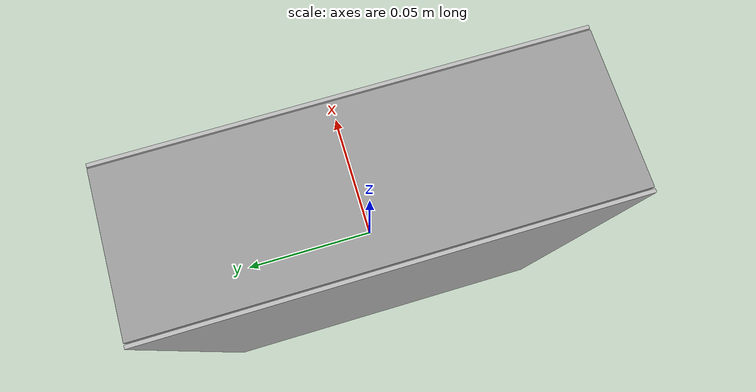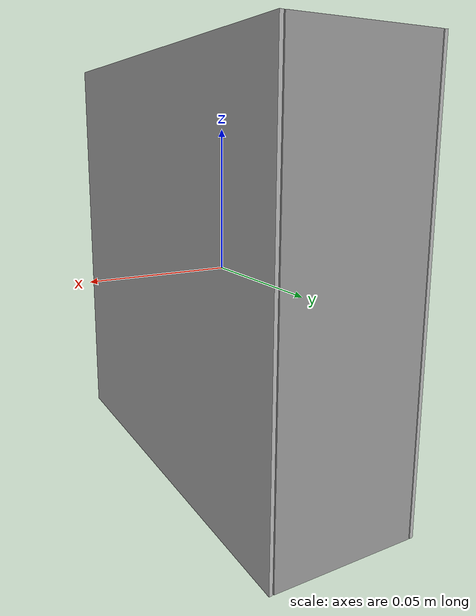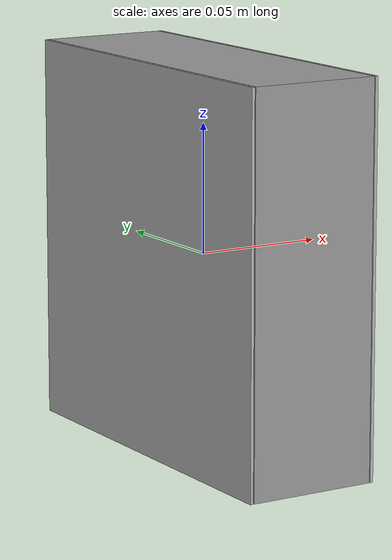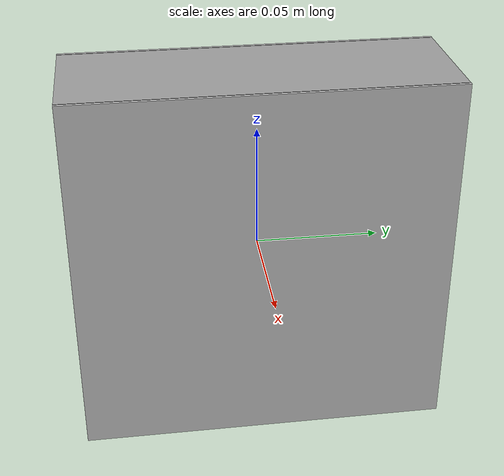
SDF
<?xml version="1.0"?>
<sdf version="1.6">
  <model name="aruco_23">
    <link name="link">
      <inertial>
        <pose>0 0 0 0 0 0</pose>
        <mass>0.001</mass>
        <inertia>
          <ixx>3.7499999999999997e-06</ixx>
          <ixy>0.0</ixy>
          <ixz>0.0</ixz>
          <iyy>1.8750008333333333e-06</iyy>
          <iyz>0.0</iyz>
          <izz>1.8750008333333e-06</izz>
        </inertia>
      </inertial>

      <!-- Front ArUco visual -->
      <visual name="front_visual">
        <pose>0.026 0 0 0 0 0</pose>
        <geometry>
          <box>
            <size>0.0012 0.15 0.15</size>
          </box>
        </geometry>
        <material>
          <script>
            <uri>model://aruco_23/materials/scripts</uri>
            <uri>model://aruco_23/materials/textures</uri>
            <name>ArucoVisualMarker23/Marker</name>
          </script>
        </material>
      </visual>

      <!-- Rear ArUco visual -->
      <visual name="rear_visual">
        <pose>-0.026 0 0 0 0 0</pose>
        <geometry>
          <box>
            <size>0.0012 0.15 0.15</size>
          </box>
        </geometry>
        <material>
          <script>
            <uri>model://aruco_23/materials/scripts</uri>
            <uri>model://aruco_23/materials/textures</uri>
            <name>ArucoVisualMarker23/Marker</name>
          </script>
        </material>
      </visual>

      <!-- Solid base box -->
      <collision name="collision">
        <pose>0 0 0 0 0 0</pose>
        <geometry>
          <box>
            <size>0.05 0.15 0.15</size>
          </box>
        </geometry>
      </collision>

      <!-- Also show the base visually -->
      <visual name="base_visual">
        <pose>0 0 0 0 0 0</pose>
        <geometry>
          <box>
            <size>0.05 0.15 0.15</size>
          </box>
        </geometry>
        <material>
          <ambient>0.7 0.7 0.7 1</ambient>
          <diffuse>0.6 0.6 0.6 1</diffuse>
        </material>
      </visual>
    </link>
  </model>
</sdf>
